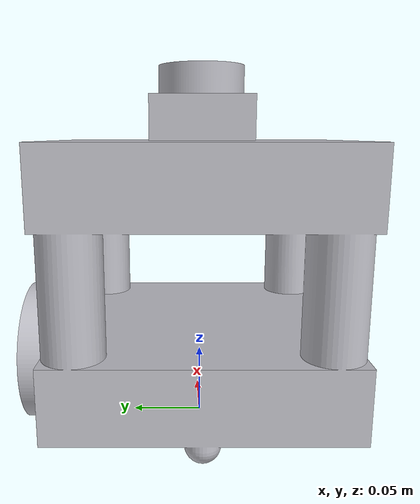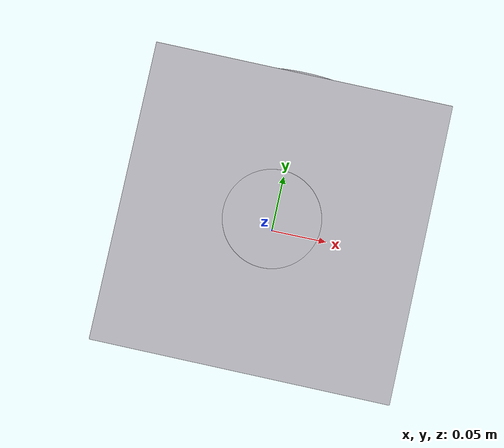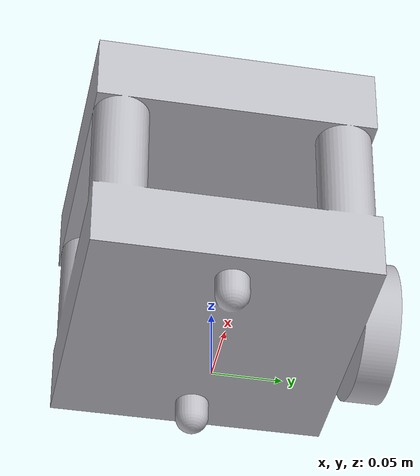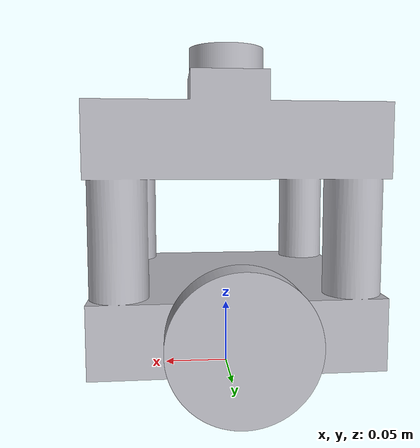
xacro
<?xml version="1.0" ?>
<robot name="patrolbot" xmlns:xacro="http://ros.org">

<xacro:include filename="$(find patrolbot_description)/urdf/materials.xacro" />
<xacro:include filename="$(find patrolbot_description)/urdf/patrolbot.ros2control" />
<xacro:include filename="$(find patrolbot_description)/urdf/patrolbot.gazebo" />
<link name="base_footprint"/>

<link name="base_link">
  <inertial>
    <origin xyz="-6.001655101174315e-15 -4.8013240809394516e-17 0.11751127858744757" rpy="0 0 0"/>
    <mass value="4.8189925993448215"/>
    <inertia ixx="0.037629" iyy="0.037723" izz="0.034012" ixy="-0.0" iyz="-0.0" ixz="-0.0"/>
  </inertial>
  <visual>
    <origin xyz="0 0 0" rpy="0 0 0"/>
    <geometry>
      <mesh filename="package://patrolbot_description/meshes/base_link.stl" scale="0.001 0.001 0.001"/>
    </geometry>
    <material name="silver"/>
  </visual>
  <collision>
    <origin xyz="0 0 0" rpy="0 0 0"/>
    <geometry>
      <mesh filename="package://patrolbot_description/meshes/base_link.stl" scale="0.001 0.001 0.001"/>
    </geometry>
  </collision>
</link>

<link name="right_wheel_1">
  <inertial>
    <origin xyz="-5.790023100122029e-18 -0.012499999999999997 0.0" rpy="0 0 0"/>
    <mass value="0.1826050729899067"/>
    <inertia ixx="0.000124" iyy="0.000228" izz="0.000124" ixy="-0.0" iyz="0.0" ixz="0.0"/>
  </inertial>
  <visual>
    <origin xyz="-0.0 0.1 -0.05" rpy="0 0 0"/>
    <geometry>
      <mesh filename="package://patrolbot_description/meshes/right_wheel_1.stl" scale="0.001 0.001 0.001"/>
    </geometry>
    <material name="silver"/>
  </visual>
  <collision>
    <origin xyz="-0.0 0.1 -0.05" rpy="0 0 0"/>
    <geometry>
      <mesh filename="package://patrolbot_description/meshes/right_wheel_1.stl" scale="0.001 0.001 0.001"/>
    </geometry>
  </collision>
</link>

<link name="left_wheel_1">
  <inertial>
    <origin xyz="1.737006930036608e-17 0.012499999999999997 0.0" rpy="0 0 0"/>
    <mass value="0.18260507298990675"/>
    <inertia ixx="0.000124" iyy="0.000228" izz="0.000124" ixy="-0.0" iyz="0.0" ixz="0.0"/>
  </inertial>
  <visual>
    <origin xyz="-0.0 -0.1 -0.05" rpy="0 0 0"/>
    <geometry>
      <mesh filename="package://patrolbot_description/meshes/left_wheel_1.stl" scale="0.001 0.001 0.001"/>
    </geometry>
    <material name="silver"/>
  </visual>
  <collision>
    <origin xyz="-0.0 -0.1 -0.05" rpy="0 0 0"/>
    <geometry>
      <mesh filename="package://patrolbot_description/meshes/left_wheel_1.stl" scale="0.001 0.001 0.001"/>
    </geometry>
  </collision>
</link>

<link name="lidar_1">
  <inertial>
    <origin xyz="0.0 0.0 0.010000000000000009" rpy="0 0 0"/>
    <mass value="0.07571360503105627"/>
    <inertia ixx="1.9e-05" iyy="1.9e-05" izz="3.3e-05" ixy="-0.0" iyz="-0.0" ixz="-0.0"/>
  </inertial>
  <visual>
    <origin xyz="0.0 -0.0 -0.235" rpy="0 0 0"/>
    <geometry>
      <mesh filename="package://patrolbot_description/meshes/lidar_1.stl" scale="0.001 0.001 0.001"/>
    </geometry>
    <material name="silver"/>
  </visual>
  <collision>
    <origin xyz="0.0 -0.0 -0.235" rpy="0 0 0"/>
    <geometry>
      <mesh filename="package://patrolbot_description/meshes/lidar_1.stl" scale="0.001 0.001 0.001"/>
    </geometry>
  </collision>
</link>

<joint name="base_joint" type="fixed">
  <origin xyz="0.0 0.0 0.0" rpy="0 0 0"/>
  <parent link="base_footprint"/>
  <child link="base_link"/>
</joint>

<joint name="right_wheel_joint" type="continuous">
  <origin xyz="0.0 -0.1 0.05" rpy="0 0 0"/>
  <parent link="base_link"/>
  <child link="right_wheel_1"/>
  <axis xyz="0.0 1.0 0.0"/>
</joint>

<joint name="left_wheel_joint" type="continuous">
  <origin xyz="0.0 0.1 0.05" rpy="0 0 0"/>
  <parent link="base_link"/>
  <child link="left_wheel_1"/>
  <axis xyz="0.0 1.0 0.0"/>
</joint>

<joint name="lidar_joint" type="fixed">
  <origin xyz="0.0 0.0 0.235" rpy="0 0 0"/>
  <parent link="base_link"/>
  <child link="lidar_1"/>
</joint>

</robot>
